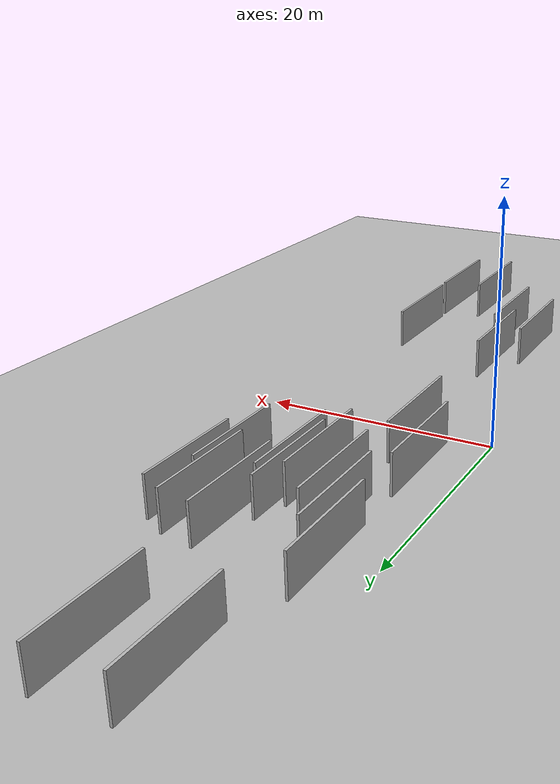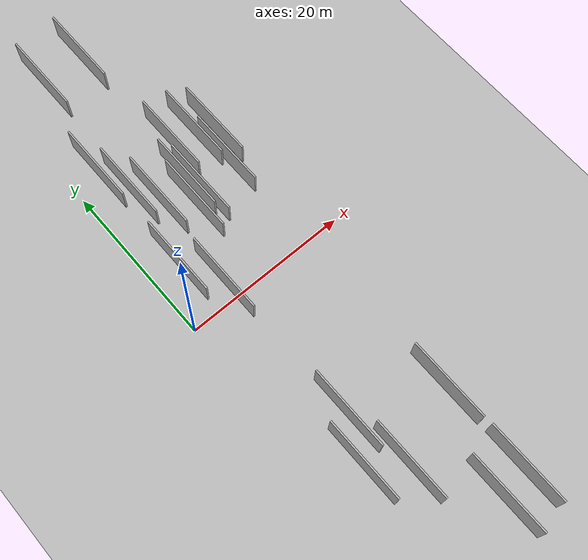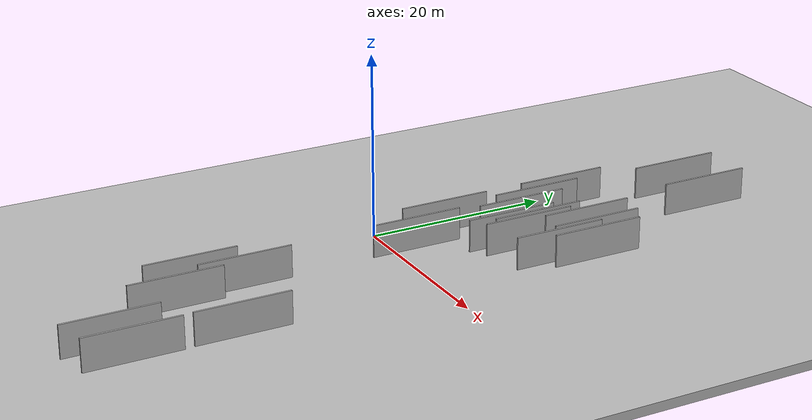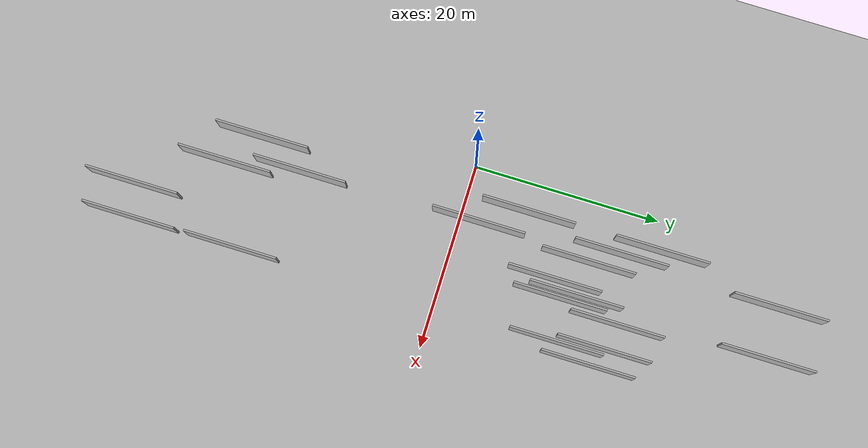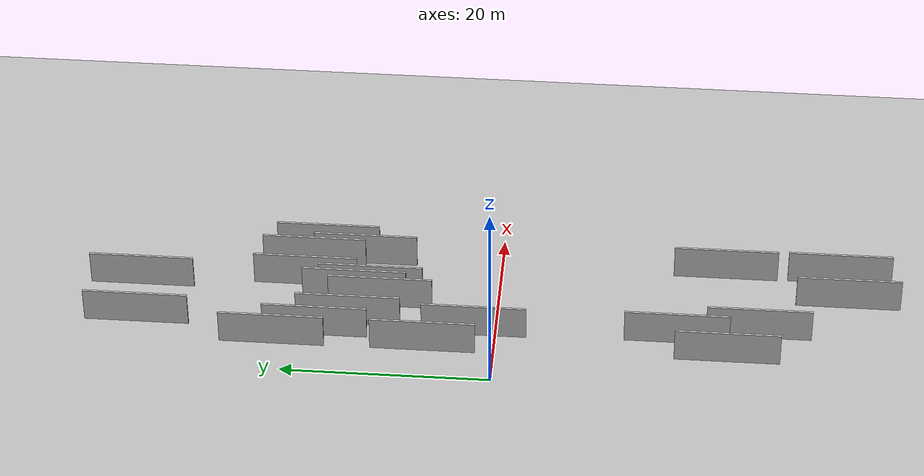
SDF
<?xml version="1.0" encoding="utf-8"?>

<sdf version="1.6">

   <world name="default">

      <gui fullscreen="0">

         <camera name="user_camera">

            <pose>-15 0 4.57585 0 0 0</pose>

            <view_controller>orbit</view_controller>

         </camera>

      </gui>

      <scene>

         <sky>

           <clouds>

             <speed>12</speed>

           </clouds>

         </sky>

         <ambient>0.4 0.4 0.4 1</ambient>

         <background>0.7 0.7 0.7 1</background>

         <shadows>1</shadows>

      </scene>

      <gravity>0 0 -9.8066</gravity>

      <magnetic_field>6e-06 2.3e-05 -4.2e-05</magnetic_field>

      <physics default="0" name="default_physics" type="ode">

         <ode>

            <solver>

               <type>quick</type>

               <iters>10</iters>

               <sor>1.0</sor>

               <use_dynamic_moi_rescaling>0</use_dynamic_moi_rescaling>

            </solver>

            <constraints>

               <cfm>0</cfm>

               <erp>0.2</erp>

               <contact_max_correcting_vel>100</contact_max_correcting_vel>

               <contact_surface_layer>0.001</contact_surface_layer>

            </constraints>

         </ode>

         <max_step_size>0.004</max_step_size>

         <real_time_factor>1</real_time_factor>

         <real_time_update_rate>250</real_time_update_rate>

      </physics>

      <light name="sun" type="directional">

         <cast_shadows>1</cast_shadows>

         <pose>0 0 10 0 0 0</pose>

         <diffuse>0.8 0.8 0.8 1</diffuse>

         <specular>0.2 0.2 0.2 1</specular>

         <attenuation>

            <range>1000</range>

            <constant>0.9</constant>

            <linear>0.01</linear>

            <quadratic>0.001</quadratic>

         </attenuation>

         <direction>-0.5 0.1 -0.9</direction>

      </light>

      <include>

         <name>ground_plane_1</name>

         <uri>model://HANNAS_ground_plane</uri>

         <pose>0 0 0  0 0 0</pose>

      </include>

      <include>

         <name>ground_plane_2</name>

         <uri>model://HANNAS_ground_plane</uri>

         <pose>100 0 0  0 0 0</pose>

      </include>

      <model name="HANNAS_wall_1">

         <static>1</static>

         <pose frame="">3.2042 21.0533 0.0 0.000000 0.000000 1.570796</pose>

         <link name="link">

            <pose frame="">0 0 2.00 0 0 0</pose>

            <collision name="collision">

               <geometry>

                  <box>

                     <size>10.00 0.2 4.00</size>

                  </box>

               </geometry>

               <max_contacts>10</max_contacts>

               <surface>

                  <contact>

                     <ode/>

                  </contact>

                  <bounce/>

                  <friction>

                     <torsional>

                        <ode/>

                     </torsional>

                     <ode/>

                  </friction>

               </surface>

            </collision>

            <visual name="visual">

               <cast_shadows>0</cast_shadows>

               <geometry>

                  <box>

                     <size>10.00 0.2 4.00</size>

                  </box>

               </geometry>

               <material>

                  <script>

                     <uri>model://HANNAS_wall/materials/scripts</uri>

                     <uri>model://HANNAS_wall/materials/textures</uri>

                     <name>vrc/HANNAS_wall</name>

                  </script>

               </material>

            </visual>

            <self_collide>0</self_collide>

            <enable_wind>0</enable_wind>

            <kinematic>0</kinematic>

         </link>

      </model>

      <model name="HANNAS_wall_2">

         <static>1</static>

         <pose frame="">10.9452 12.3371 0.0 0.000000 0.000000 1.570796</pose>

         <link name="link">

            <pose frame="">0 0 2.00 0 0 0</pose>

            <collision name="collision">

               <geometry>

                  <box>

                     <size>10.00 0.2 4.00</size>

                  </box>

               </geometry>

               <max_contacts>10</max_contacts>

               <surface>

                  <contact>

                     <ode/>

                  </contact>

                  <bounce/>

                  <friction>

                     <torsional>

                        <ode/>

                     </torsional>

                     <ode/>

                  </friction>

               </surface>

            </collision>

            <visual name="visual">

               <cast_shadows>0</cast_shadows>

               <geometry>

                  <box>

                     <size>10.00 0.2 4.00</size>

                  </box>

               </geometry>

               <material>

                  <script>

                     <uri>model://HANNAS_wall/materials/scripts</uri>

                     <uri>model://HANNAS_wall/materials/textures</uri>

                     <name>vrc/HANNAS_wall</name>

                  </script>

               </material>

            </visual>

            <self_collide>0</self_collide>

            <enable_wind>0</enable_wind>

            <kinematic>0</kinematic>

         </link>

      </model>

      <model name="HANNAS_wall_3">

         <static>1</static>

         <pose frame="">11.8864 18.7464 0.0 0.000000 0.000000 1.570796</pose>

         <link name="link">

            <pose frame="">0 0 2.00 0 0 0</pose>

            <collision name="collision">

               <geometry>

                  <box>

                     <size>10.00 0.2 4.00</size>

                  </box>

               </geometry>

               <max_contacts>10</max_contacts>

               <surface>

                  <contact>

                     <ode/>

                  </contact>

                  <bounce/>

                  <friction>

                     <torsional>

                        <ode/>

                     </torsional>

                     <ode/>

                  </friction>

               </surface>

            </collision>

            <visual name="visual">

               <cast_shadows>0</cast_shadows>

               <geometry>

                  <box>

                     <size>10.00 0.2 4.00</size>

                  </box>

               </geometry>

               <material>

                  <script>

                     <uri>model://HANNAS_wall/materials/scripts</uri>

                     <uri>model://HANNAS_wall/materials/textures</uri>

                     <name>vrc/HANNAS_wall</name>

                  </script>

               </material>

            </visual>

            <self_collide>0</self_collide>

            <enable_wind>0</enable_wind>

            <kinematic>0</kinematic>

         </link>

      </model>

      <model name="HANNAS_wall_4">

         <static>1</static>

         <pose frame="">15.4226 13.2727 0.0 0.000000 0.000000 1.570796</pose>

         <link name="link">

            <pose frame="">0 0 2.00 0 0 0</pose>

            <collision name="collision">

               <geometry>

                  <box>

                     <size>10.00 0.2 4.00</size>

                  </box>

               </geometry>

               <max_contacts>10</max_contacts>

               <surface>

                  <contact>

                     <ode/>

                  </contact>

                  <bounce/>

                  <friction>

                     <torsional>

                        <ode/>

                     </torsional>

                     <ode/>

                  </friction>

               </surface>

            </collision>

            <visual name="visual">

               <cast_shadows>0</cast_shadows>

               <geometry>

                  <box>

                     <size>10.00 0.2 4.00</size>

                  </box>

               </geometry>

               <material>

                  <script>

                     <uri>model://HANNAS_wall/materials/scripts</uri>

                     <uri>model://HANNAS_wall/materials/textures</uri>

                     <name>vrc/HANNAS_wall</name>

                  </script>

               </material>

            </visual>

            <self_collide>0</self_collide>

            <enable_wind>0</enable_wind>

            <kinematic>0</kinematic>

         </link>

      </model>

      <model name="HANNAS_wall_5">

         <static>1</static>

         <pose frame="">4.6894 17.0988 0.0 0.000000 0.000000 1.570796</pose>

         <link name="link">

            <pose frame="">0 0 2.00 0 0 0</pose>

            <collision name="collision">

               <geometry>

                  <box>

                     <size>10.00 0.2 4.00</size>

                  </box>

               </geometry>

               <max_contacts>10</max_contacts>

               <surface>

                  <contact>

                     <ode/>

                  </contact>

                  <bounce/>

                  <friction>

                     <torsional>

                        <ode/>

                     </torsional>

                     <ode/>

                  </friction>

               </surface>

            </collision>

            <visual name="visual">

               <cast_shadows>0</cast_shadows>

               <geometry>

                  <box>

                     <size>10.00 0.2 4.00</size>

                  </box>

               </geometry>

               <material>

                  <script>

                     <uri>model://HANNAS_wall/materials/scripts</uri>

                     <uri>model://HANNAS_wall/materials/textures</uri>

                     <name>vrc/HANNAS_wall</name>

                  </script>

               </material>

            </visual>

            <self_collide>0</self_collide>

            <enable_wind>0</enable_wind>

            <kinematic>0</kinematic>

         </link>

      </model>

      <model name="HANNAS_wall_6">

         <static>1</static>

         <pose frame="">9.2612 11.2786 0.0 0.000000 0.000000 1.570796</pose>

         <link name="link">

            <pose frame="">0 0 2.00 0 0 0</pose>

            <collision name="collision">

               <geometry>

                  <box>

                     <size>10.00 0.2 4.00</size>

                  </box>

               </geometry>

               <max_contacts>10</max_contacts>

               <surface>

                  <contact>

                     <ode/>

                  </contact>

                  <bounce/>

                  <friction>

                     <torsional>

                        <ode/>

                     </torsional>

                     <ode/>

                  </friction>

               </surface>

            </collision>

            <visual name="visual">

               <cast_shadows>0</cast_shadows>

               <geometry>

                  <box>

                     <size>10.00 0.2 4.00</size>

                  </box>

               </geometry>

               <material>

                  <script>

                     <uri>model://HANNAS_wall/materials/scripts</uri>

                     <uri>model://HANNAS_wall/materials/textures</uri>

                     <name>vrc/HANNAS_wall</name>

                  </script>

               </material>

            </visual>

            <self_collide>0</self_collide>

            <enable_wind>0</enable_wind>

            <kinematic>0</kinematic>

         </link>

      </model>

      <model name="HANNAS_wall_7">

         <static>1</static>

         <pose frame="">3.8236 -22.0837 0.0 0.000000 0.000000 1.570796</pose>

         <link name="link">

            <pose frame="">0 0 2.00 0 0 0</pose>

            <collision name="collision">

               <geometry>

                  <box>

                     <size>10.00 0.2 4.00</size>

                  </box>

               </geometry>

               <max_contacts>10</max_contacts>

               <surface>

                  <contact>

                     <ode/>

                  </contact>

                  <bounce/>

                  <friction>

                     <torsional>

                        <ode/>

                     </torsional>

                     <ode/>

                  </friction>

               </surface>

            </collision>

            <visual name="visual">

               <cast_shadows>0</cast_shadows>

               <geometry>

                  <box>

                     <size>10.00 0.2 4.00</size>

                  </box>

               </geometry>

               <material>

                  <script>

                     <uri>model://HANNAS_wall/materials/scripts</uri>

                     <uri>model://HANNAS_wall/materials/textures</uri>

                     <name>vrc/HANNAS_wall</name>

                  </script>

               </material>

            </visual>

            <self_collide>0</self_collide>

            <enable_wind>0</enable_wind>

            <kinematic>0</kinematic>

         </link>

      </model>

      <model name="HANNAS_wall_8">

         <static>1</static>

         <pose frame="">5.3517 34.2824 0.0 0.000000 0.000000 1.570796</pose>

         <link name="link">

            <pose frame="">0 0 2.00 0 0 0</pose>

            <collision name="collision">

               <geometry>

                  <box>

                     <size>10.00 0.2 4.00</size>

                  </box>

               </geometry>

               <max_contacts>10</max_contacts>

               <surface>

                  <contact>

                     <ode/>

                  </contact>

                  <bounce/>

                  <friction>

                     <torsional>

                        <ode/>

                     </torsional>

                     <ode/>

                  </friction>

               </surface>

            </collision>

            <visual name="visual">

               <cast_shadows>0</cast_shadows>

               <geometry>

                  <box>

                     <size>10.00 0.2 4.00</size>

                  </box>

               </geometry>

               <material>

                  <script>

                     <uri>model://HANNAS_wall/materials/scripts</uri>

                     <uri>model://HANNAS_wall/materials/textures</uri>

                     <name>vrc/HANNAS_wall</name>

                  </script>

               </material>

            </visual>

            <self_collide>0</self_collide>

            <enable_wind>0</enable_wind>

            <kinematic>0</kinematic>

         </link>

      </model>

      <model name="HANNAS_wall_9">

         <static>1</static>

         <pose frame="">10.2132 13.8691 0.0 0.000000 0.000000 1.570796</pose>

         <link name="link">

            <pose frame="">0 0 2.00 0 0 0</pose>

            <collision name="collision">

               <geometry>

                  <box>

                     <size>10.00 0.2 4.00</size>

                  </box>

               </geometry>

               <max_contacts>10</max_contacts>

               <surface>

                  <contact>

                     <ode/>

                  </contact>

                  <bounce/>

                  <friction>

                     <torsional>

                        <ode/>

                     </torsional>

                     <ode/>

                  </friction>

               </surface>

            </collision>

            <visual name="visual">

               <cast_shadows>0</cast_shadows>

               <geometry>

                  <box>

                     <size>10.00 0.2 4.00</size>

                  </box>

               </geometry>

               <material>

                  <script>

                     <uri>model://HANNAS_wall/materials/scripts</uri>

                     <uri>model://HANNAS_wall/materials/textures</uri>

                     <name>vrc/HANNAS_wall</name>

                  </script>

               </material>

            </visual>

            <self_collide>0</self_collide>

            <enable_wind>0</enable_wind>

            <kinematic>0</kinematic>

         </link>

      </model>

      <model name="HANNAS_wall_10">

         <static>1</static>

         <pose frame="">12.3492 -33.4831 0.0 0.000000 0.000000 1.570796</pose>

         <link name="link">

            <pose frame="">0 0 2.00 0 0 0</pose>

            <collision name="collision">

               <geometry>

                  <box>

                     <size>10.00 0.2 4.00</size>

                  </box>

               </geometry>

               <max_contacts>10</max_contacts>

               <surface>

                  <contact>

                     <ode/>

                  </contact>

                  <bounce/>

                  <friction>

                     <torsional>

                        <ode/>

                     </torsional>

                     <ode/>

                  </friction>

               </surface>

            </collision>

            <visual name="visual">

               <cast_shadows>0</cast_shadows>

               <geometry>

                  <box>

                     <size>10.00 0.2 4.00</size>

                  </box>

               </geometry>

               <material>

                  <script>

                     <uri>model://HANNAS_wall/materials/scripts</uri>

                     <uri>model://HANNAS_wall/materials/textures</uri>

                     <name>vrc/HANNAS_wall</name>

                  </script>

               </material>

            </visual>

            <self_collide>0</self_collide>

            <enable_wind>0</enable_wind>

            <kinematic>0</kinematic>

         </link>

      </model>

      <model name="HANNAS_wall_11">

         <static>1</static>

         <pose frame="">6.1510 -17.2649 0.0 0.000000 0.000000 1.570796</pose>

         <link name="link">

            <pose frame="">0 0 2.00 0 0 0</pose>

            <collision name="collision">

               <geometry>

                  <box>

                     <size>10.00 0.2 4.00</size>

                  </box>

               </geometry>

               <max_contacts>10</max_contacts>

               <surface>

                  <contact>

                     <ode/>

                  </contact>

                  <bounce/>

                  <friction>

                     <torsional>

                        <ode/>

                     </torsional>

                     <ode/>

                  </friction>

               </surface>

            </collision>

            <visual name="visual">

               <cast_shadows>0</cast_shadows>

               <geometry>

                  <box>

                     <size>10.00 0.2 4.00</size>

                  </box>

               </geometry>

               <material>

                  <script>

                     <uri>model://HANNAS_wall/materials/scripts</uri>

                     <uri>model://HANNAS_wall/materials/textures</uri>

                     <name>vrc/HANNAS_wall</name>

                  </script>

               </material>

            </visual>

            <self_collide>0</self_collide>

            <enable_wind>0</enable_wind>

            <kinematic>0</kinematic>

         </link>

      </model>

      <model name="HANNAS_wall_12">

         <static>1</static>

         <pose frame="">15.7927 -21.6719 0.0 0.000000 0.000000 1.570796</pose>

         <link name="link">

            <pose frame="">0 0 2.00 0 0 0</pose>

            <collision name="collision">

               <geometry>

                  <box>

                     <size>10.00 0.2 4.00</size>

                  </box>

               </geometry>

               <max_contacts>10</max_contacts>

               <surface>

                  <contact>

                     <ode/>

                  </contact>

                  <bounce/>

                  <friction>

                     <torsional>

                        <ode/>

                     </torsional>

                     <ode/>

                  </friction>

               </surface>

            </collision>

            <visual name="visual">

               <cast_shadows>0</cast_shadows>

               <geometry>

                  <box>

                     <size>10.00 0.2 4.00</size>

                  </box>

               </geometry>

               <material>

                  <script>

                     <uri>model://HANNAS_wall/materials/scripts</uri>

                     <uri>model://HANNAS_wall/materials/textures</uri>

                     <name>vrc/HANNAS_wall</name>

                  </script>

               </material>

            </visual>

            <self_collide>0</self_collide>

            <enable_wind>0</enable_wind>

            <kinematic>0</kinematic>

         </link>

      </model>

      <model name="HANNAS_wall_13">

         <static>1</static>

         <pose frame="">6.4807 14.1033 0.0 0.000000 0.000000 1.570796</pose>

         <link name="link">

            <pose frame="">0 0 2.00 0 0 0</pose>

            <collision name="collision">

               <geometry>

                  <box>

                     <size>10.00 0.2 4.00</size>

                  </box>

               </geometry>

               <max_contacts>10</max_contacts>

               <surface>

                  <contact>

                     <ode/>

                  </contact>

                  <bounce/>

                  <friction>

                     <torsional>

                        <ode/>

                     </torsional>

                     <ode/>

                  </friction>

               </surface>

            </collision>

            <visual name="visual">

               <cast_shadows>0</cast_shadows>

               <geometry>

                  <box>

                     <size>10.00 0.2 4.00</size>

                  </box>

               </geometry>

               <material>

                  <script>

                     <uri>model://HANNAS_wall/materials/scripts</uri>

                     <uri>model://HANNAS_wall/materials/textures</uri>

                     <name>vrc/HANNAS_wall</name>

                  </script>

               </material>

            </visual>

            <self_collide>0</self_collide>

            <enable_wind>0</enable_wind>

            <kinematic>0</kinematic>

         </link>

      </model>

      <model name="HANNAS_wall_14">

         <static>1</static>

         <pose frame="">14.7194 18.1837 0.0 0.000000 0.000000 1.570796</pose>

         <link name="link">

            <pose frame="">0 0 2.00 0 0 0</pose>

            <collision name="collision">

               <geometry>

                  <box>

                     <size>10.00 0.2 4.00</size>

                  </box>

               </geometry>

               <max_contacts>10</max_contacts>

               <surface>

                  <contact>

                     <ode/>

                  </contact>

                  <bounce/>

                  <friction>

                     <torsional>

                        <ode/>

                     </torsional>

                     <ode/>

                  </friction>

               </surface>

            </collision>

            <visual name="visual">

               <cast_shadows>0</cast_shadows>

               <geometry>

                  <box>

                     <size>10.00 0.2 4.00</size>

                  </box>

               </geometry>

               <material>

                  <script>

                     <uri>model://HANNAS_wall/materials/scripts</uri>

                     <uri>model://HANNAS_wall/materials/textures</uri>

                     <name>vrc/HANNAS_wall</name>

                  </script>

               </material>

            </visual>

            <self_collide>0</self_collide>

            <enable_wind>0</enable_wind>

            <kinematic>0</kinematic>

         </link>

      </model>

      <model name="HANNAS_wall_15">

         <static>1</static>

         <pose frame="">3.2721 6.6997 0.0 0.000000 0.000000 1.570796</pose>

         <link name="link">

            <pose frame="">0 0 2.00 0 0 0</pose>

            <collision name="collision">

               <geometry>

                  <box>

                     <size>10.00 0.2 4.00</size>

                  </box>

               </geometry>

               <max_contacts>10</max_contacts>

               <surface>

                  <contact>

                     <ode/>

                  </contact>

                  <bounce/>

                  <friction>

                     <torsional>

                        <ode/>

                     </torsional>

                     <ode/>

                  </friction>

               </surface>

            </collision>

            <visual name="visual">

               <cast_shadows>0</cast_shadows>

               <geometry>

                  <box>

                     <size>10.00 0.2 4.00</size>

                  </box>

               </geometry>

               <material>

                  <script>

                     <uri>model://HANNAS_wall/materials/scripts</uri>

                     <uri>model://HANNAS_wall/materials/textures</uri>

                     <name>vrc/HANNAS_wall</name>

                  </script>

               </material>

            </visual>

            <self_collide>0</self_collide>

            <enable_wind>0</enable_wind>

            <kinematic>0</kinematic>

         </link>

      </model>

      <model name="HANNAS_wall_16">

         <static>1</static>

         <pose frame="">15.8923 -32.6658 0.0 0.000000 0.000000 1.570796</pose>

         <link name="link">

            <pose frame="">0 0 2.00 0 0 0</pose>

            <collision name="collision">

               <geometry>

                  <box>

                     <size>10.00 0.2 4.00</size>

                  </box>

               </geometry>

               <max_contacts>10</max_contacts>

               <surface>

                  <contact>

                     <ode/>

                  </contact>

                  <bounce/>

                  <friction>

                     <torsional>

                        <ode/>

                     </torsional>

                     <ode/>

                  </friction>

               </surface>

            </collision>

            <visual name="visual">

               <cast_shadows>0</cast_shadows>

               <geometry>

                  <box>

                     <size>10.00 0.2 4.00</size>

                  </box>

               </geometry>

               <material>

                  <script>

                     <uri>model://HANNAS_wall/materials/scripts</uri>

                     <uri>model://HANNAS_wall/materials/textures</uri>

                     <name>vrc/HANNAS_wall</name>

                  </script>

               </material>

            </visual>

            <self_collide>0</self_collide>

            <enable_wind>0</enable_wind>

            <kinematic>0</kinematic>

         </link>

      </model>

      <model name="HANNAS_wall_17">

         <static>1</static>

         <pose frame="">10.7638 34.4642 0.0 0.000000 0.000000 1.570796</pose>

         <link name="link">

            <pose frame="">0 0 2.00 0 0 0</pose>

            <collision name="collision">

               <geometry>

                  <box>

                     <size>10.00 0.2 4.00</size>

                  </box>

               </geometry>

               <max_contacts>10</max_contacts>

               <surface>

                  <contact>

                     <ode/>

                  </contact>

                  <bounce/>

                  <friction>

                     <torsional>

                        <ode/>

                     </torsional>

                     <ode/>

                  </friction>

               </surface>

            </collision>

            <visual name="visual">

               <cast_shadows>0</cast_shadows>

               <geometry>

                  <box>

                     <size>10.00 0.2 4.00</size>

                  </box>

               </geometry>

               <material>

                  <script>

                     <uri>model://HANNAS_wall/materials/scripts</uri>

                     <uri>model://HANNAS_wall/materials/textures</uri>

                     <name>vrc/HANNAS_wall</name>

                  </script>

               </material>

            </visual>

            <self_collide>0</self_collide>

            <enable_wind>0</enable_wind>

            <kinematic>0</kinematic>

         </link>

      </model>

      <model name="HANNAS_wall_18">

         <static>1</static>

         <pose frame="">5.7923 2.0256 0.0 0.000000 0.000000 1.570796</pose>

         <link name="link">

            <pose frame="">0 0 2.00 0 0 0</pose>

            <collision name="collision">

               <geometry>

                  <box>

                     <size>10.00 0.2 4.00</size>

                  </box>

               </geometry>

               <max_contacts>10</max_contacts>

               <surface>

                  <contact>

                     <ode/>

                  </contact>

                  <bounce/>

                  <friction>

                     <torsional>

                        <ode/>

                     </torsional>

                     <ode/>

                  </friction>

               </surface>

            </collision>

            <visual name="visual">

               <cast_shadows>0</cast_shadows>

               <geometry>

                  <box>

                     <size>10.00 0.2 4.00</size>

                  </box>

               </geometry>

               <material>

                  <script>

                     <uri>model://HANNAS_wall/materials/scripts</uri>

                     <uri>model://HANNAS_wall/materials/textures</uri>

                     <name>vrc/HANNAS_wall</name>

                  </script>

               </material>

            </visual>

            <self_collide>0</self_collide>

            <enable_wind>0</enable_wind>

            <kinematic>0</kinematic>

         </link>

      </model>

      <model name="HANNAS_wall_19">

         <static>1</static>

         <pose frame="">7.4054 -25.0261 0.0 0.000000 0.000000 1.570796</pose>

         <link name="link">

            <pose frame="">0 0 2.00 0 0 0</pose>

            <collision name="collision">

               <geometry>

                  <box>

                     <size>10.00 0.2 4.00</size>

                  </box>

               </geometry>

               <max_contacts>10</max_contacts>

               <surface>

                  <contact>

                     <ode/>

                  </contact>

                  <bounce/>

                  <friction>

                     <torsional>

                        <ode/>

                     </torsional>

                     <ode/>

                  </friction>

               </surface>

            </collision>

            <visual name="visual">

               <cast_shadows>0</cast_shadows>

               <geometry>

                  <box>

                     <size>10.00 0.2 4.00</size>

                  </box>

               </geometry>

               <material>

                  <script>

                     <uri>model://HANNAS_wall/materials/scripts</uri>

                     <uri>model://HANNAS_wall/materials/textures</uri>

                     <name>vrc/HANNAS_wall</name>

                  </script>

               </material>

            </visual>

            <self_collide>0</self_collide>

            <enable_wind>0</enable_wind>

            <kinematic>0</kinematic>

         </link>

      </model>

      <model name="HANNAS_wall_20">

         <static>1</static>

         <pose frame="">16.7255 17.0262 0.0 0.000000 0.000000 1.570796</pose>

         <link name="link">

            <pose frame="">0 0 2.00 0 0 0</pose>

            <collision name="collision">

               <geometry>

                  <box>

                     <size>10.00 0.2 4.00</size>

                  </box>

               </geometry>

               <max_contacts>10</max_contacts>

               <surface>

                  <contact>

                     <ode/>

                  </contact>

                  <bounce/>

                  <friction>

                     <torsional>

                        <ode/>

                     </torsional>

                     <ode/>

                  </friction>

               </surface>

            </collision>

            <visual name="visual">

               <cast_shadows>0</cast_shadows>

               <geometry>

                  <box>

                     <size>10.00 0.2 4.00</size>

                  </box>

               </geometry>

               <material>

                  <script>

                     <uri>model://HANNAS_wall/materials/scripts</uri>

                     <uri>model://HANNAS_wall/materials/textures</uri>

                     <name>vrc/HANNAS_wall</name>

                  </script>

               </material>

            </visual>

            <self_collide>0</self_collide>

            <enable_wind>0</enable_wind>

            <kinematic>0</kinematic>

         </link>

      </model>

   </world>

</sdf>

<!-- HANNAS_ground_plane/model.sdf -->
<sdf version="1.4">
<model name="HANNAS_ground_plane">
  <static>true</static>
    <link name="link">
      <collision name="collision">
        <geometry>
          <plane>
            <normal>0 0 1</normal>
            <size>1000 1000</size>
          </plane>
        </geometry>
        <surface>
          <friction>
            <ode>
              <mu>100</mu>
              <mu2>50</mu2>
            </ode>
          </friction>
        </surface>
      </collision>
      <visual name="visual">
        <cast_shadows>false</cast_shadows>
        <geometry>
          <plane>
            <normal>0 0 1</normal>
            <size>1000 1000</size>
          </plane>
        </geometry>
        <material>
          <script>
            <uri>model://HANNAS_ground_plane/materials/scripts/HANNAS_ground_plane.material</uri>
	    <uri>model://HANNAS_ground_plane/materials/textures</uri>
            <name>HANNASGroundPlane/Image</name>
          </script>
        </material>
      </visual>
    </link>
  </model>
</sdf>
